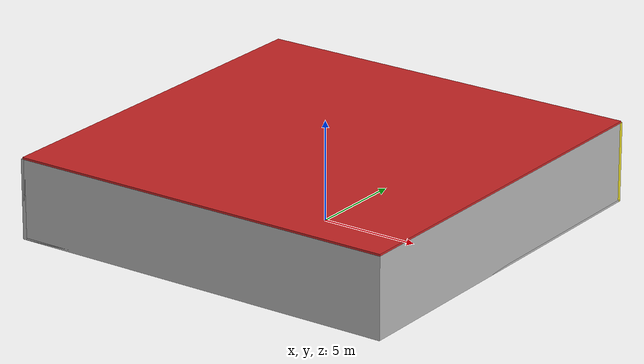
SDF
<sdf version="1.4">
 <world name="default">
  <physics type="ode">
   <max_step_size>0.001</max_step_size>
   <real_time_factor>1</real_time_factor>
   <real_time_update_rate>1000</real_time_update_rate>
   <gravity>0 0 -9.8</gravity>
  </physics>
  <scene><ambient>0.4 0.4 0.4 1</ambient><background>0.7 0.7 0.7 1</background><shadows>1</shadows></scene>
  <model name="Surrounding">
   <static>1</static>
   <link name="Ceiling">
    <collision name="Ceiling_Collision"><geometry><box><size>20 20 0.1</size></box></geometry></collision>
    <visual name="Ceiling_Visual">
     <geometry><box><size>20 20 0.1</size></box></geometry>
     <material>
      <script><uri>file://media/materials/scripts/gazebo.material</uri><name>Gazebo/RedGlow</name></script>
     </material>
    </visual>
    <pose>0 0 4.05 0 0 0</pose>
   </link>
   <link name="Wall_South">
    <collision name="Wall_South_Collision">
     <geometry><box><size>20 0 4</size></box></geometry>
     <pose>0 0 2 0 -0 0</pose>
    </collision>
    <visual name="Wall_South_Visual">
     <pose>0 0 2 0 -0 0</pose>
     <geometry><box><size>20 0 4</size></box></geometry>
     <material>
      <script><uri>file://media/materials/scripts/gazebo.material</uri><name>Gazebo/PioneerBody</name></script>
     </material>
    </visual>
    <velocity_decay><linear>0</linear><angular>0</angular></velocity_decay>
    <pose>0 -10 0 0 -0 0</pose>
   </link>
   <link name="Wall_East">
    <collision name="Wall_21_Collision">
     <geometry><box><size>20 0 4</size></box></geometry>
     <pose>0 0 2 0 -0 0</pose>
    </collision>
    <visual name="Wall_21_Visual">
     <pose>0 0 2 0 -0 0</pose>
     <geometry><box><size>20 0 4</size></box></geometry>
     <material>
      <script><uri>file://media/materials/scripts/gazebo.material</uri><name>Gazebo/LightOff</name></script>
     </material>
    </visual>
    <velocity_decay><linear>0</linear><angular>0</angular></velocity_decay>
    <pose>10 0 0 0 -0 1.5708</pose>
   </link>
   <link name="Wall_North">
    <collision name="Wall_22_Collision">
     <geometry><box><size>20 0.2 4</size></box></geometry>
     <pose>0 0 2 0 -0 0</pose>
    </collision>
    <visual name="Wall_22_Visual">
     <pose>0 0 2 0 -0 0</pose>
     <geometry><box><size>20 0.2 4</size></box></geometry>
     <material>
      <script><uri>file://media/materials/scripts/gazebo.material</uri><name>Gazebo/YellowGlow</name></script>
     </material>
    </visual>
    <velocity_decay><linear>0</linear><angular>0</angular></velocity_decay>
    <pose>0 10 0 0 -0 0</pose>
   </link>
   <link name="Wall_West">
    <collision name="Wall_23_Collision">
     <geometry><box><size>20 0.2 4</size></box></geometry>
     <pose>0 0 2 0 -0 0</pose>
    </collision>
    <visual name="Wall_23_Visual">
     <pose>0 0 2 0 -0 0</pose>
     <geometry><box><size>20 0.2 4</size></box></geometry>
     <material>
      <script><uri>file://media/materials/scripts/gazebo.material</uri><name>Gazebo/LightOff</name></script>
     </material>
    </visual>
    <velocity_decay><linear>0</linear><angular>0</angular></velocity_decay>
    <pose>-10 0 0 0 0 -1.5708</pose>
   </link>
   <link name="Ground_link">
    <collision name="collision">
     <pose>0 0 .05 0 -0 0</pose>
     <geometry><box><size>20 20 0.1</size></box></geometry>
    </collision>
    <visual name="visual">
     <pose>0 0 .05 0 -0 0</pose>
     <geometry><box><size>20 20 0.1</size></box></geometry>
     <material>
      <script><uri>file://media/materials/scripts/gazebo.material</uri><name>Gazebo/LightOn</name></script>
     </material>
    </visual>
   </link>
   <static>1</static>
  </model>
  <spherical_coordinates>
   <surface_model>EARTH_WGS84</surface_model>
   <latitude_deg>0</latitude_deg>
   <longitude_deg>0</longitude_deg>
   <elevation>0</elevation>
   <heading_deg>0</heading_deg>
  </spherical_coordinates>
  <light name="lightball_0" type="diffuse">
   <diffuse>0.8 0.8 0.8 1</diffuse>
   <specular>0.2 0.2 0.2 1</specular>
   <attenuation>
    <range>100</range>
    <constant>0.7</constant>
    <linear>0.01</linear>
    <quadratic>0.001</quadratic>
   </attenuation>
   <direction>-0.5 0.1 -0.9</direction>
   <pose>9.10282885881 3.72452292459 1.12693154875 0 0 0</pose>
  </light>
  <light name="lightball_1" type="diffuse">
   <diffuse>0.8 0.8 0.8 1</diffuse>
   <specular>0.2 0.2 0.2 1</specular>
   <attenuation>
    <range>100</range>
    <constant>0.7</constant>
    <linear>0.01</linear>
    <quadratic>0.001</quadratic>
   </attenuation>
   <direction>-0.5 0.1 -0.9</direction>
   <pose>-8.96959387284 -9.51314473987 1.39687068823 0 0 0</pose>
  </light>
  <light name="lightball_2" type="diffuse">
   <diffuse>0.8 0.8 0.8 1</diffuse>
   <specular>0.2 0.2 0.2 1</specular>
   <attenuation>
    <range>100</range>
    <constant>0.7</constant>
    <linear>0.01</linear>
    <quadratic>0.001</quadratic>
   </attenuation>
   <direction>-0.5 0.1 -0.9</direction>
   <pose>-8.99676272821 -6.44886516976 3.83729467759 0 0 0</pose>
  </light>
  <include><uri>model://cabinet</uri><pose>-4.15752489853 -4.70505318388 0 0 0 1.67855377893</pose></include>
  <include><uri>model://cabinet</uri><pose>-4.06172013388 3.35506803476 0 0 0 1.80249180092</pose></include>
  <include><uri>model://cabinet</uri><pose>2.56611387552 2.3408573329 0 0 0 0.941756644954</pose></include>
  <include>
   <uri>model://textured_shapes</uri>
   <pose>2.25803212974 3.39839217936 0 0 0 0.022685715881</pose>
  </include>
  <include>
   <uri>model://construction_cone</uri>
   <pose>1.3694875109 7.99380372466 0 0 0 1.28724665788</pose>
  </include>
  <include><uri>model://cabinet</uri><pose>7.63062333085 -7.58365172031 0 0 0 2.00925609671</pose></include>
 </world>
</sdf>

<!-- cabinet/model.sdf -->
<sdf version="1.5">
  <model name="cabinet">
    <static>true</static>
    <link name="cabinet_bottom_plate">
      <inertial>
        <pose>0 0 -1 0 0 0</pose>
        <inertia>
          <ixx>2.050000</ixx>
          <ixy>0</ixy>
          <ixz>0</ixz>
          <iyy>2.050000</iyy>
          <iyz>0</iyz>
          <izz>2.050000</izz>
        </inertia>
        <mass>25.000000</mass>
      </inertial>
      <collision name="cabinet_bottom_plate_geom">
        <pose>0 0 0.010000 0 0 0</pose>
        <geometry>
          <box>
            <size>0.450000 0.450000 0.020000</size>
          </box>
        </geometry>
      </collision>
      <visual name="cabinet_bottom_plate_geom_visual">
        <pose>0 0 0.010000 0 0 0</pose>
        <geometry>
          <box>
            <size>0.450000 0.450000 0.020000</size>
          </box>
        </geometry>
        <material>
          <script>
            <uri>model://media/materials/scripts/gazebo.material</uri>
            <name>Gazebo/Wood</name>
          </script>
        </material>
      </visual>
      <collision name="cabinet_bottom_plate_geom_cabinet_back_plate">
        <pose>0.235000 0 0.510000 0 0 0</pose>
        <geometry>
          <box>
            <size>0.020000 0.450000 1.020000</size>
          </box>
        </geometry>
      </collision>
      <visual name="cabinet_bottom_plate_geom_cabinet_back_plate_visual">
        <pose>0.235000 0 0.510000 0 0 0</pose>
        <geometry>
          <box>
            <size>0.020000 0.450000 1.020000</size>
          </box>
        </geometry>
        <material>
          <script>
            <uri>model://media/materials/scripts/gazebo.material</uri>
            <name>Gazebo/Wood</name>
          </script>
        </material>
      </visual>
      <collision name="cabinet_bottom_plate_geom_cabinet_left_plate">
        <pose>0 0.235000 0.510000 0 0 0</pose>
        <geometry>
          <box>
            <size>0.450000 0.020000 1.020000</size>
          </box>
        </geometry>
      </collision>
      <visual name="cabinet_bottom_plate_geom_cabinet_left_plate_visual">
        <pose>0 0.235000 0.510000 0 0 0</pose>
        <geometry>
          <box>
            <size>0.450000 0.020000 1.020000</size>
          </box>
        </geometry>
        <material>
          <script>
            <uri>model://media/materials/scripts/gazebo.material</uri>
            <name>Gazebo/Wood</name>
          </script>
        </material>
      </visual>
      <collision name="cabinet_bottom_plate_geom_cabinet_middle_plate">
        <pose>0 0 0.510000 0 0 0</pose>
        <geometry>
          <box>
            <size>0.450000 0.450000 0.020000</size>
          </box>
        </geometry>
      </collision>
      <visual name="cabinet_bottom_plate_geom_cabinet_middle_plate_visual">
        <pose>0 0 0.510000 0 0 0</pose>
        <geometry>
          <box>
            <size>0.450000 0.450000 0.020000</size>
          </box>
        </geometry>
        <material>
          <script>
            <uri>model://media/materials/scripts/gazebo.material</uri>
            <name>Gazebo/Wood</name>
          </script>
        </material>
      </visual>
      <collision name="cabinet_bottom_plate_geom_cabinet_right_plate">
        <pose>0 -0.235000 0.510000 0 0 0</pose>
        <geometry>
          <box>
            <size>0.450000 0.020000 1.020000</size>
          </box>
        </geometry>
      </collision>
      <visual name="cabinet_bottom_plate_geom_cabinet_right_plate_visual">
        <pose>0 -0.235000 0.510000 0 0 0</pose>
        <geometry>
          <box>
            <size>0.450000 0.020000 1.020000</size>
          </box>
        </geometry>
        <material>
          <script>
            <uri>model://media/materials/scripts/gazebo.material</uri>
            <name>Gazebo/Wood</name>
          </script>
        </material>
      </visual>
      <collision name="cabinet_bottom_plate_geom_cabinet_top_plate">
        <pose>0 0 1.010000 0 0 0</pose>
        <geometry>
          <box>
            <size>0.450000 0.450000 0.020000</size>
          </box>
        </geometry>
      </collision>
      <visual name="cabinet_bottom_plate_geom_cabinet_top_plate_visual">
        <pose>0 0 1.010000 0 0 0</pose>
        <geometry>
          <box>
            <size>0.450000 0.450000 0.020000</size>
          </box>
        </geometry>
        <material>
          <script>
            <uri>model://media/materials/scripts/gazebo.material</uri>
            <name>Gazebo/Wood</name>
          </script>
        </material>
      </visual>
    </link>
  </model>
</sdf>

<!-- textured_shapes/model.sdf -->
<sdf version="1.6">
  <model name="textured_shapes">
    <pose>0 0 0.5 0 0 0</pose>
    <link name="box">
      <pose>0 -1.5 0 0 0 0</pose>
      <collision name="collision">
        <geometry>
          <box>
            <size>1 1 1</size>
          </box>
        </geometry>
      </collision>
      <visual name="visual">
        <geometry>
          <box>
            <size>1 1 1</size>
          </box>
        </geometry>
        <material>
          <script>
            <uri>model://../model_source/models/textured_shapes/materials/scripts</uri>
            <uri>model://../model_source/models/textured_shapes/materials/textures</uri>
            <name>TexturedShape/Squares</name>
          </script>
        </material>
      </visual>
    </link>
    <link name="sphere">
      <collision name="collision">
        <geometry>
          <sphere>
            <radius>0.5</radius>
          </sphere>
        </geometry>
      </collision>
      <visual name="visual">
        <geometry>
          <sphere>
            <radius>0.5</radius>
          </sphere>
        </geometry>
        <material>
          <script>
            <uri>model://../model_source/models/textured_shapes/materials/scripts</uri>
            <uri>model://../model_source/models/textured_shapes/materials/textures</uri>
            <name>TexturedShape/Squares</name>
          </script>
        </material>
      </visual>
    </link>
    <link name="cylinder">
      <pose>0 1.5 0 0 0 0</pose>
      <collision name="collision">
        <geometry>
          <cylinder>
            <radius>0.5</radius>
            <length>1</length>
          </cylinder>
        </geometry>
      </collision>
      <visual name="visual">
        <geometry>
          <cylinder>
            <radius>0.5</radius>
            <length>1</length>
          </cylinder>
        </geometry>
        <material>
          <script>
            <uri>model://../model_source/models/textured_shapes/materials/scripts</uri>
            <uri>model://../model_source/models/textured_shapes/materials/textures</uri>
            <name>TexturedShape/Squares</name>
          </script>
        </material>
      </visual>
    </link>
  </model>
</sdf>

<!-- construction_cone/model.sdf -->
<sdf version="1.5">
  <model name="Construction Cone">
    <link name="link">
      <collision name="collision">
        <geometry>
          <mesh>
            <scale>10 10 10</scale>
            <uri>file://isr-testbed/construction_cone/meshes/construction_cone.dae</uri>
          </mesh>
        </geometry>
      </collision>
      <visual name="visual">
        <geometry>
          <mesh>
            <scale>10 10 10</scale>
            <uri>file://isr-testbed/construction_cone/meshes/construction_cone.dae</uri>
          </mesh>
        </geometry>
      </visual>
    </link>
  </model>
</sdf>
